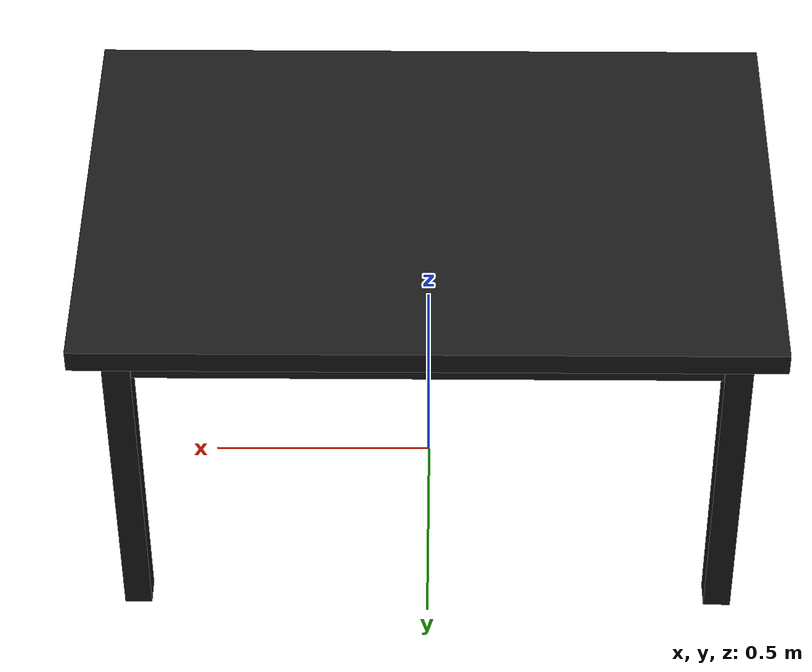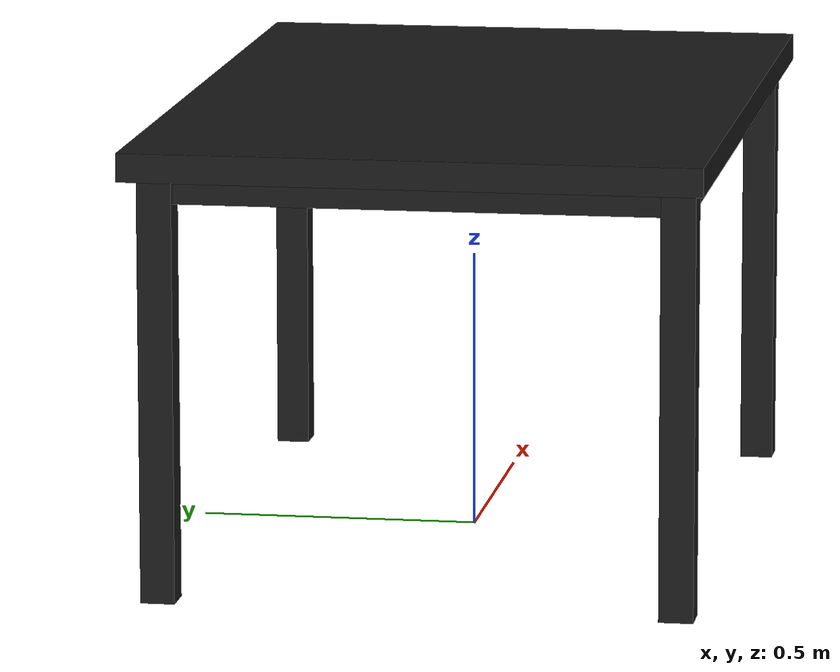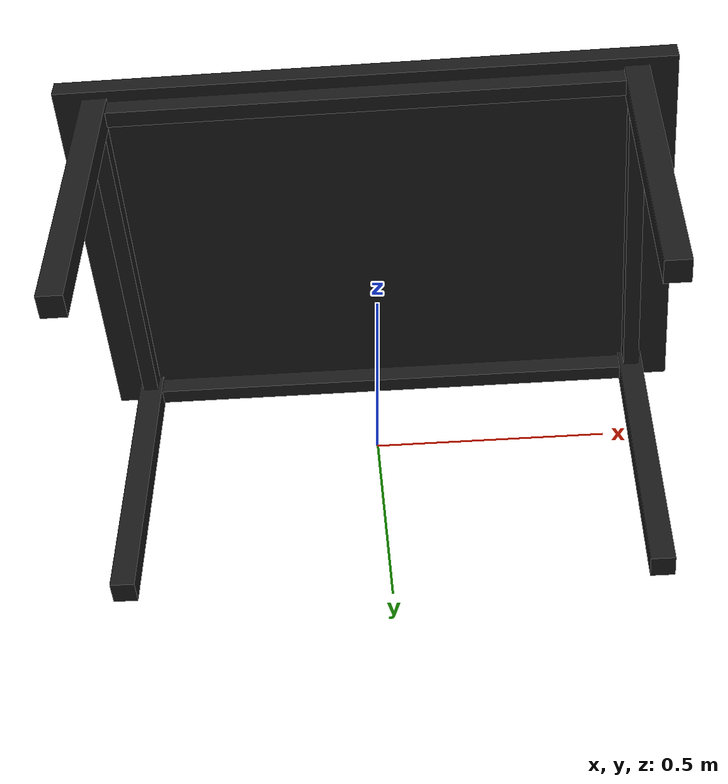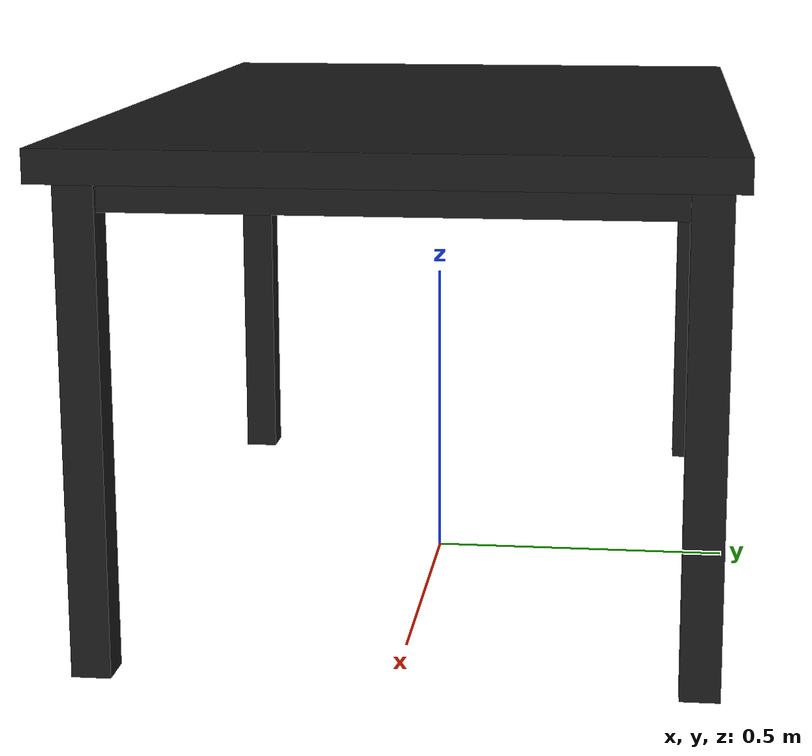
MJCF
<mujoco model="industrial_workbench_black">
  <compiler angle="degree" coordinate="local"/>

  <asset>
    <material name="black_mat" rgba="0.1 0.1 0.1 1" reflectance="0.15"/>
  </asset>

  <worldbody>
    <body name="workbench" pos="0 0 0">

      <geom name="table_top" type="box" pos="0 0 0.775" size="0.75 0.5 0.025" material="black_mat" mass="20" friction="1.5 0.005 0.0001"/>

      <geom name="apron_front" type="box" pos="0  0.45 0.725" size="0.65 0.02 0.025" material="black_mat" mass="2"/>
      <geom name="apron_back"  type="box" pos="0 -0.45 0.725" size="0.65 0.02 0.025" material="black_mat" mass="2"/>
      <geom name="apron_left"  type="box" pos=" 0.65 0 0.725" size="0.02 0.45 0.025" material="black_mat" mass="2"/>
      <geom name="apron_right" type="box" pos="-0.65 0 0.725" size="0.02 0.45 0.025" material="black_mat" mass="2"/>

      <geom name="leg_fl" type="box" pos=" 0.65  0.45 0.375" size="0.03 0.03 0.375" material="black_mat" mass="3"/>
      <geom name="leg_fr" type="box" pos=" 0.65 -0.45 0.375" size="0.03 0.03 0.375" material="black_mat" mass="3"/>
      <geom name="leg_bl" type="box" pos="-0.65  0.45 0.375" size="0.03 0.03 0.375" material="black_mat" mass="3"/>
      <geom name="leg_br" type="box" pos="-0.65 -0.45 0.375" size="0.03 0.03 0.375" material="black_mat" mass="3"/>

    </body>
  </worldbody>
</mujoco>
